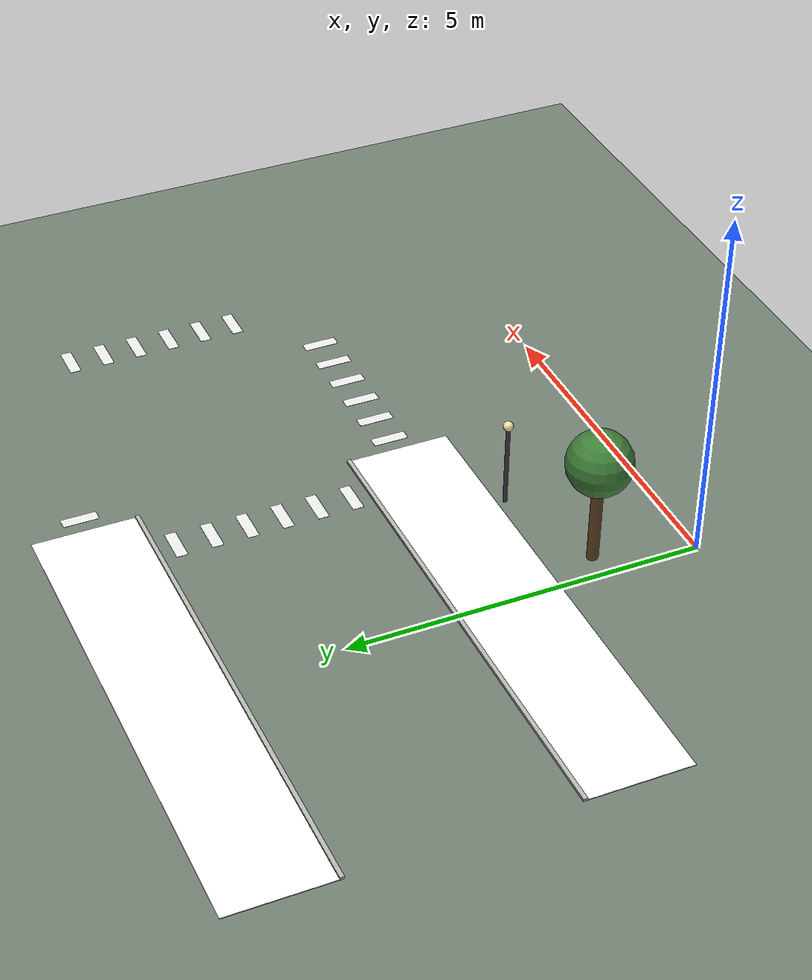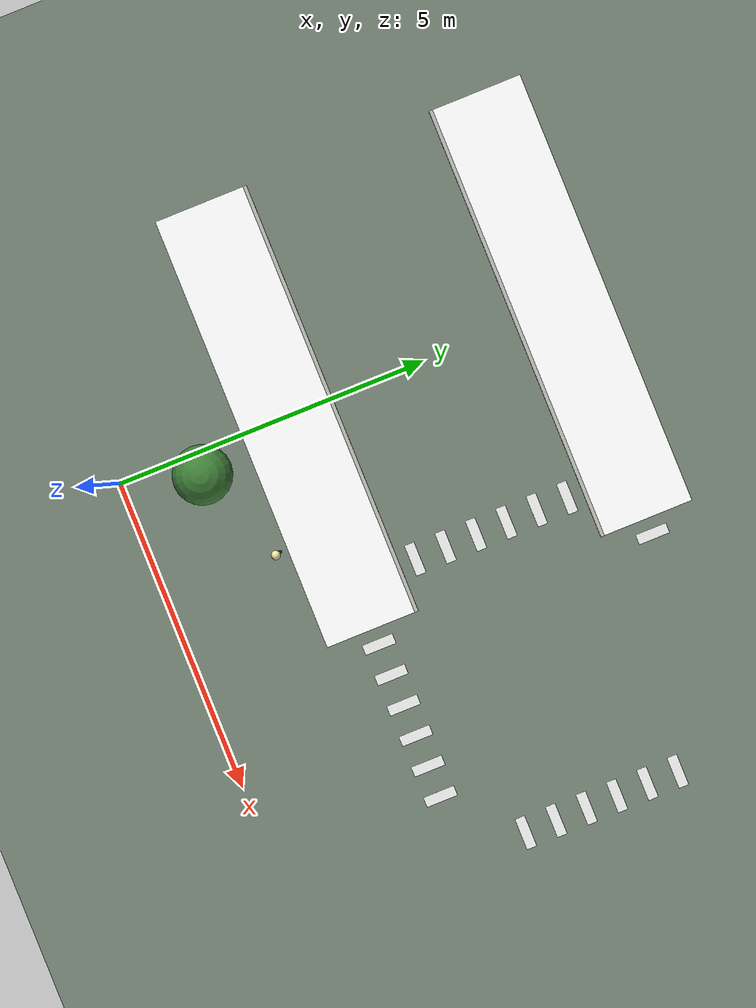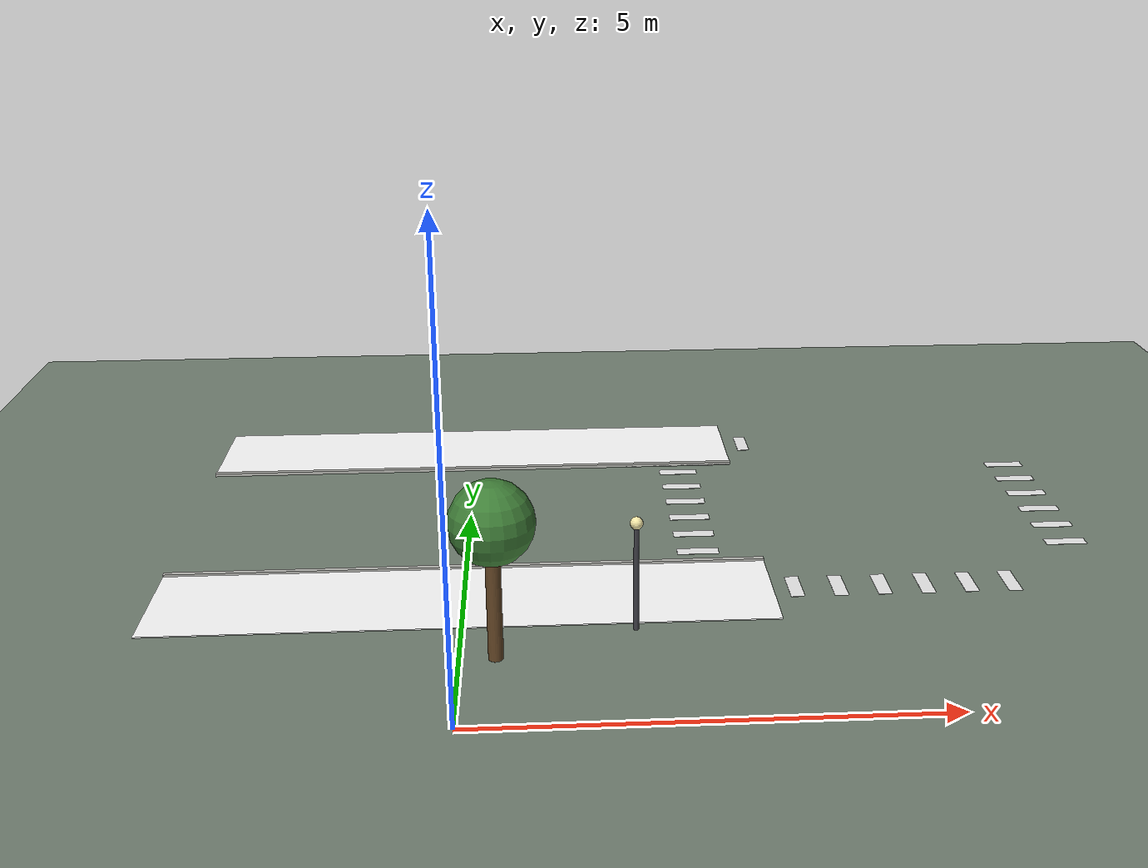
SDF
<sdf version="1.9">
 <world name="limo_city_blocks">
  <model name="ground_plane">
   <static>true</static>
   <link name="link">
    <collision name="collision">
     <geometry><plane><normal>0 0 1</normal><size>53 53</size></plane></geometry>
     <surface><friction><ode><mu>0.8</mu><mu2>0.8</mu2></ode></friction></surface>
    </collision>
    <visual name="visual">
     <geometry><plane><normal>0 0 1</normal><size>53 53</size></plane></geometry>
     <material><ambient>0.45 0.5 0.45 1</ambient><diffuse>0.45 0.5 0.45 1</diffuse></material>
    </visual>
   </link>
  </model>
  <model name="walk_n_1_1">
   <static>true</static>
   <pose>0.000 2.750 0.008 0 0 0.000</pose>
   <link name="link">
    <visual name="visual">
     <geometry><box><size>7.000 1.500 0.012</size></box></geometry>
     <material>
      <ambient>1 1 1 1</ambient>
      <diffuse>1 1 1 1</diffuse>
      <pbr>
       <metal>
        <albedo_map>model://city_textures/paving.png</albedo_map>
        <roughness>0.85</roughness>
        <metalness>0.0</metalness>
       </metal>
      </pbr>
     </material>
    </visual>
   </link>
  </model>
  <model name="walk_s_1_2">
   <static>true</static>
   <pose>0.000 7.250 0.008 0 0 0.000</pose>
   <link name="link">
    <visual name="visual">
     <geometry><box><size>7.000 1.500 0.012</size></box></geometry>
     <material>
      <ambient>1 1 1 1</ambient>
      <diffuse>1 1 1 1</diffuse>
      <pbr>
       <metal>
        <albedo_map>model://city_textures/paving.png</albedo_map>
        <roughness>0.85</roughness>
        <metalness>0.0</metalness>
       </metal>
      </pbr>
     </material>
    </visual>
   </link>
  </model>
  <model name="curb_n_1_1">
   <static>true</static>
   <pose>0.000 3.470 0.020 0 0 0.000</pose>
   <link name="link">
    <visual name="visual">
     <geometry><box><size>7.000 0.060 0.040</size></box></geometry>
     <material><ambient>0.72 0.72 0.7 1</ambient><diffuse>0.72 0.72 0.7 1</diffuse></material>
    </visual>
   </link>
  </model>
  <model name="curb_s_1_2">
   <static>true</static>
   <pose>0.000 6.530 0.020 0 0 0.000</pose>
   <link name="link">
    <visual name="visual">
     <geometry><box><size>7.000 0.060 0.040</size></box></geometry>
     <material><ambient>0.72 0.72 0.7 1</ambient><diffuse>0.72 0.72 0.7 1</diffuse></material>
    </visual>
   </link>
  </model>
  <model name="lamp_9">
   <static>true</static>
   <pose>1.880 1.880 0 0 0 0</pose>
   <link name="link">
    <collision name="collision">
     <pose>0 0 0.6 0 0 0</pose>
     <geometry><cylinder><radius>0.03</radius><length>1.2</length></cylinder></geometry>
    </collision>
    <visual name="pole">
     <pose>0 0 0.6 0 0 0</pose>
     <geometry><cylinder><radius>0.03</radius><length>1.2</length></cylinder></geometry>
     <material><ambient>0.2 0.2 0.22 1</ambient><diffuse>0.25 0.25 0.28 1</diffuse></material>
    </visual>
    <visual name="head">
     <pose>0 0 1.25 0 0 0</pose>
     <geometry><sphere><radius>0.07</radius></sphere></geometry>
     <material>
      <ambient>0.9 0.85 0.6 1</ambient>
      <diffuse>0.95 0.9 0.65 1</diffuse>
      <emissive>0.5 0.45 0.25 1</emissive>
     </material>
    </visual>
   </link>
  </model>
  <model name="zebra_9_0">
   <static>true</static>
   <pose>3.750 2.750 0.013 0 0 0.000</pose>
   <link name="link">
    <visual name="visual">
     <geometry><box><size>0.160 0.500 0.002</size></box></geometry>
     <material><ambient>0.92 0.92 0.92 1</ambient><diffuse>0.92 0.92 0.92 1</diffuse></material>
    </visual>
   </link>
  </model>
  <model name="zebra_9_1">
   <static>true</static>
   <pose>4.250 2.750 0.013 0 0 0.000</pose>
   <link name="link">
    <visual name="visual">
     <geometry><box><size>0.160 0.500 0.002</size></box></geometry>
     <material><ambient>0.92 0.92 0.92 1</ambient><diffuse>0.92 0.92 0.92 1</diffuse></material>
    </visual>
   </link>
  </model>
  <model name="zebra_9_2">
   <static>true</static>
   <pose>4.750 2.750 0.013 0 0 0.000</pose>
   <link name="link">
    <visual name="visual">
     <geometry><box><size>0.160 0.500 0.002</size></box></geometry>
     <material><ambient>0.92 0.92 0.92 1</ambient><diffuse>0.92 0.92 0.92 1</diffuse></material>
    </visual>
   </link>
  </model>
  <model name="zebra_9_3">
   <static>true</static>
   <pose>5.250 2.750 0.013 0 0 0.000</pose>
   <link name="link">
    <visual name="visual">
     <geometry><box><size>0.160 0.500 0.002</size></box></geometry>
     <material><ambient>0.92 0.92 0.92 1</ambient><diffuse>0.92 0.92 0.92 1</diffuse></material>
    </visual>
   </link>
  </model>
  <model name="zebra_9_4">
   <static>true</static>
   <pose>5.750 2.750 0.013 0 0 0.000</pose>
   <link name="link">
    <visual name="visual">
     <geometry><box><size>0.160 0.500 0.002</size></box></geometry>
     <material><ambient>0.92 0.92 0.92 1</ambient><diffuse>0.92 0.92 0.92 1</diffuse></material>
    </visual>
   </link>
  </model>
  <model name="zebra_9_5">
   <static>true</static>
   <pose>6.250 2.750 0.013 0 0 0.000</pose>
   <link name="link">
    <visual name="visual">
     <geometry><box><size>0.160 0.500 0.002</size></box></geometry>
     <material><ambient>0.92 0.92 0.92 1</ambient><diffuse>0.92 0.92 0.92 1</diffuse></material>
    </visual>
   </link>
  </model>
  <model name="zebra_10_0">
   <static>true</static>
   <pose>3.750 7.250 0.013 0 0 0.000</pose>
   <link name="link">
    <visual name="visual">
     <geometry><box><size>0.160 0.500 0.002</size></box></geometry>
     <material><ambient>0.92 0.92 0.92 1</ambient><diffuse>0.92 0.92 0.92 1</diffuse></material>
    </visual>
   </link>
  </model>
  <model name="zebra_21_0">
   <static>true</static>
   <pose>2.750 3.750 0.013 0 0 0.000</pose>
   <link name="link">
    <visual name="visual">
     <geometry><box><size>0.500 0.160 0.002</size></box></geometry>
     <material><ambient>0.92 0.92 0.92 1</ambient><diffuse>0.92 0.92 0.92 1</diffuse></material>
    </visual>
   </link>
  </model>
  <model name="zebra_21_1">
   <static>true</static>
   <pose>2.750 4.250 0.013 0 0 0.000</pose>
   <link name="link">
    <visual name="visual">
     <geometry><box><size>0.500 0.160 0.002</size></box></geometry>
     <material><ambient>0.92 0.92 0.92 1</ambient><diffuse>0.92 0.92 0.92 1</diffuse></material>
    </visual>
   </link>
  </model>
  <model name="zebra_21_2">
   <static>true</static>
   <pose>2.750 4.750 0.013 0 0 0.000</pose>
   <link name="link">
    <visual name="visual">
     <geometry><box><size>0.500 0.160 0.002</size></box></geometry>
     <material><ambient>0.92 0.92 0.92 1</ambient><diffuse>0.92 0.92 0.92 1</diffuse></material>
    </visual>
   </link>
  </model>
  <model name="zebra_21_3">
   <static>true</static>
   <pose>2.750 5.250 0.013 0 0 0.000</pose>
   <link name="link">
    <visual name="visual">
     <geometry><box><size>0.500 0.160 0.002</size></box></geometry>
     <material><ambient>0.92 0.92 0.92 1</ambient><diffuse>0.92 0.92 0.92 1</diffuse></material>
    </visual>
   </link>
  </model>
  <model name="zebra_21_4">
   <static>true</static>
   <pose>2.750 5.750 0.013 0 0 0.000</pose>
   <link name="link">
    <visual name="visual">
     <geometry><box><size>0.500 0.160 0.002</size></box></geometry>
     <material><ambient>0.92 0.92 0.92 1</ambient><diffuse>0.92 0.92 0.92 1</diffuse></material>
    </visual>
   </link>
  </model>
  <model name="zebra_21_5">
   <static>true</static>
   <pose>2.750 6.250 0.013 0 0 0.000</pose>
   <link name="link">
    <visual name="visual">
     <geometry><box><size>0.500 0.160 0.002</size></box></geometry>
     <material><ambient>0.92 0.92 0.92 1</ambient><diffuse>0.92 0.92 0.92 1</diffuse></material>
    </visual>
   </link>
  </model>
  <model name="zebra_22_0">
   <static>true</static>
   <pose>7.250 3.750 0.013 0 0 0.000</pose>
   <link name="link">
    <visual name="visual">
     <geometry><box><size>0.500 0.160 0.002</size></box></geometry>
     <material><ambient>0.92 0.92 0.92 1</ambient><diffuse>0.92 0.92 0.92 1</diffuse></material>
    </visual>
   </link>
  </model>
  <model name="zebra_22_1">
   <static>true</static>
   <pose>7.250 4.250 0.013 0 0 0.000</pose>
   <link name="link">
    <visual name="visual">
     <geometry><box><size>0.500 0.160 0.002</size></box></geometry>
     <material><ambient>0.92 0.92 0.92 1</ambient><diffuse>0.92 0.92 0.92 1</diffuse></material>
    </visual>
   </link>
  </model>
  <model name="zebra_22_2">
   <static>true</static>
   <pose>7.250 4.750 0.013 0 0 0.000</pose>
   <link name="link">
    <visual name="visual">
     <geometry><box><size>0.500 0.160 0.002</size></box></geometry>
     <material><ambient>0.92 0.92 0.92 1</ambient><diffuse>0.92 0.92 0.92 1</diffuse></material>
    </visual>
   </link>
  </model>
  <model name="zebra_22_3">
   <static>true</static>
   <pose>7.250 5.250 0.013 0 0 0.000</pose>
   <link name="link">
    <visual name="visual">
     <geometry><box><size>0.500 0.160 0.002</size></box></geometry>
     <material><ambient>0.92 0.92 0.92 1</ambient><diffuse>0.92 0.92 0.92 1</diffuse></material>
    </visual>
   </link>
  </model>
  <model name="zebra_22_4">
   <static>true</static>
   <pose>7.250 5.750 0.013 0 0 0.000</pose>
   <link name="link">
    <visual name="visual">
     <geometry><box><size>0.500 0.160 0.002</size></box></geometry>
     <material><ambient>0.92 0.92 0.92 1</ambient><diffuse>0.92 0.92 0.92 1</diffuse></material>
    </visual>
   </link>
  </model>
  <model name="zebra_22_5">
   <static>true</static>
   <pose>7.250 6.250 0.013 0 0 0.000</pose>
   <link name="link">
    <visual name="visual">
     <geometry><box><size>0.500 0.160 0.002</size></box></geometry>
     <material><ambient>0.92 0.92 0.92 1</ambient><diffuse>0.92 0.92 0.92 1</diffuse></material>
    </visual>
   </link>
  </model>
  <model name="tree_1">
   <static>true</static>
   <pose>0.382 1.343 0 0 0 0</pose>
   <link name="link">
    <collision name="collision">
     <pose>0 0 0.59 0 0 0</pose>
     <geometry><cylinder><radius>0.08</radius><length>1.19</length></cylinder></geometry>
    </collision>
    <visual name="trunk">
     <pose>0 0 0.59 0 0 0</pose>
     <geometry><cylinder><radius>0.08</radius><length>1.19</length></cylinder></geometry>
     <material><ambient>0.4 0.28 0.15 1</ambient><diffuse>0.4 0.28 0.15 1</diffuse></material>
    </visual>
    <visual name="canopy">
     <pose>0 0 1.54 0 0 0</pose>
     <geometry><sphere><radius>0.45</radius></sphere></geometry>
     <material><ambient>0.2 0.45 0.2 1</ambient><diffuse>0.25 0.5 0.22 1</diffuse></material>
    </visual>
   </link>
  </model>
 </world>
</sdf>
